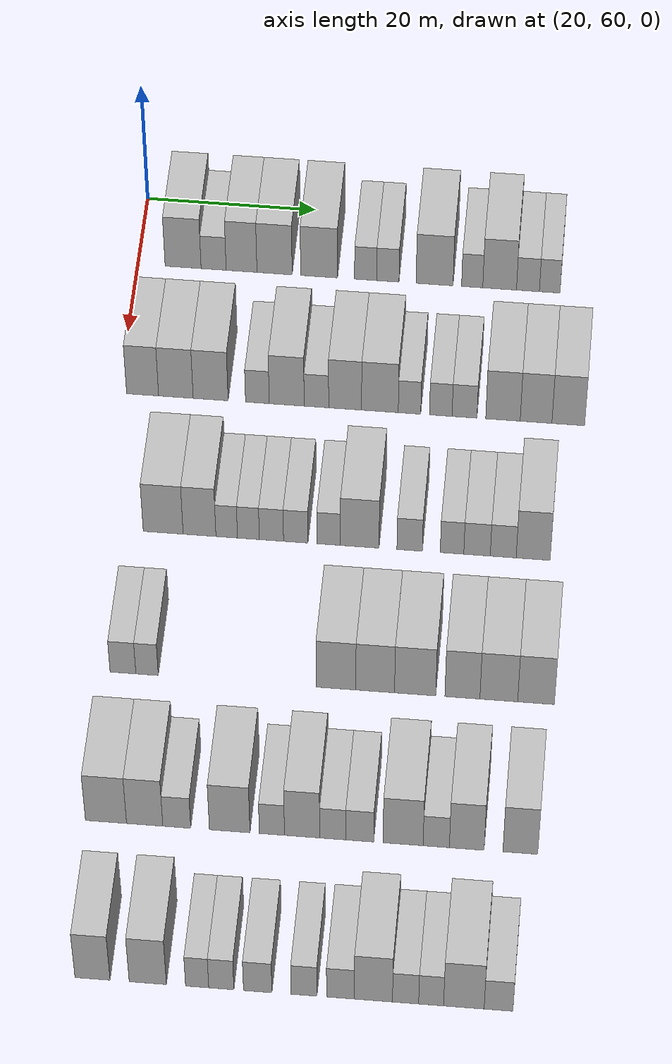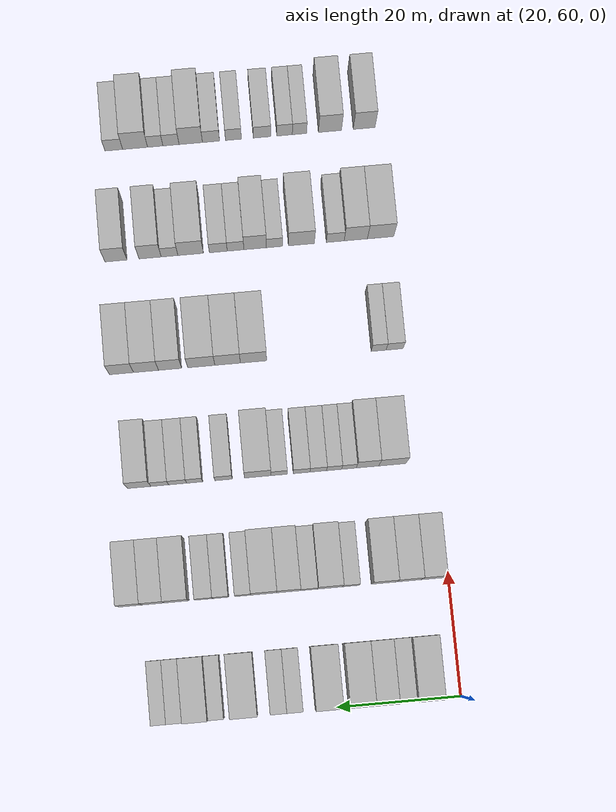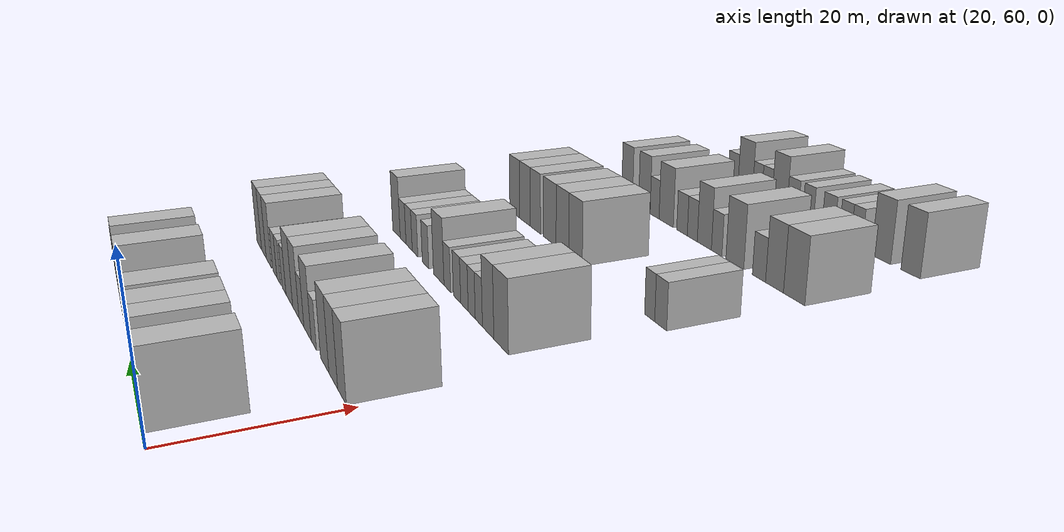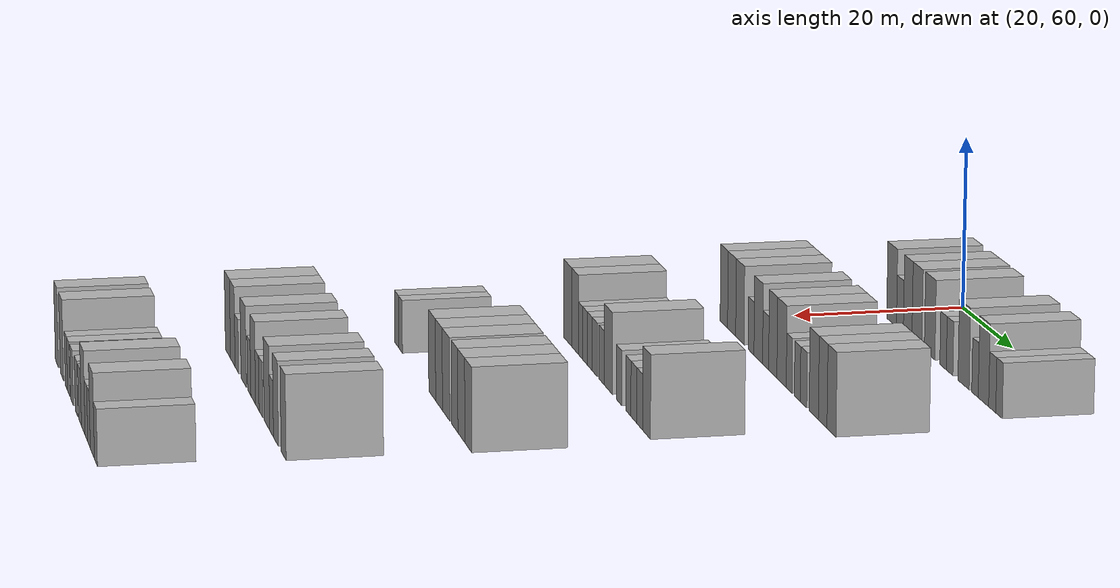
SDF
<sdf version="1.6">
 <world name="default">
  <model name="building_103">
   <static>1</static>
   <pose>25.0000 65.2869 0 0.000000 0.000000 0.000000</pose>
   <link name="link">
    <pose>0 0 4.50 0 0 0</pose>
    <collision name="collision"><geometry><box><size>10.0000 4.2329 9.0000</size></box></geometry></collision>
    <visual name="visual">
     <cast_shadows>0</cast_shadows>
     <geometry><box><size>10.0000 4.2329 9.0000</size></box></geometry>
     <material>
      <script>
       <uri>model://HANNAS_wall/materials/scripts</uri>
       <uri>model://HANNAS_wall/materials/textures</uri>
       <name>vrc/HANNAS_wall</name>
      </script>
     </material>
    </visual>
   </link>
  </model>
  <model name="building_104">
   <static>1</static>
   <pose>25.0000 68.8806 0 0.000000 0.000000 0.000000</pose>
   <link name="link">
    <pose>0 0 3.00 0 0 0</pose>
    <collision name="collision"><geometry><box><size>10.0000 2.9543 6.0000</size></box></geometry></collision>
    <visual name="visual">
     <cast_shadows>0</cast_shadows>
     <geometry><box><size>10.0000 2.9543 6.0000</size></box></geometry>
     <material>
      <script>
       <uri>model://HANNAS_wall/materials/scripts</uri>
       <uri>model://HANNAS_wall/materials/textures</uri>
       <name>vrc/HANNAS_wall</name>
      </script>
     </material>
    </visual>
   </link>
  </model>
  <model name="building_105">
   <static>1</static>
   <pose>25.0000 72.1689 0 0.000000 0.000000 0.000000</pose>
   <link name="link">
    <pose>0 0 4.50 0 0 0</pose>
    <collision name="collision"><geometry><box><size>10.0000 3.6223 9.0000</size></box></geometry></collision>
    <visual name="visual">
     <cast_shadows>0</cast_shadows>
     <geometry><box><size>10.0000 3.6223 9.0000</size></box></geometry>
     <material>
      <script>
       <uri>model://HANNAS_wall/materials/scripts</uri>
       <uri>model://HANNAS_wall/materials/textures</uri>
       <name>vrc/HANNAS_wall</name>
      </script>
     </material>
    </visual>
   </link>
  </model>
  <model name="building_106">
   <static>1</static>
   <pose>25.0000 76.0509 0 0.000000 0.000000 0.000000</pose>
   <link name="link">
    <pose>0 0 4.50 0 0 0</pose>
    <collision name="collision"><geometry><box><size>10.0000 4.1418 9.0000</size></box></geometry></collision>
    <visual name="visual">
     <cast_shadows>0</cast_shadows>
     <geometry><box><size>10.0000 4.1418 9.0000</size></box></geometry>
     <material>
      <script>
       <uri>model://HANNAS_wall/materials/scripts</uri>
       <uri>model://HANNAS_wall/materials/textures</uri>
       <name>vrc/HANNAS_wall</name>
      </script>
     </material>
    </visual>
   </link>
  </model>
  <model name="building_107">
   <static>1</static>
   <pose>25.0000 81.2848 0 0.000000 0.000000 0.000000</pose>
   <link name="link">
    <pose>0 0 4.50 0 0 0</pose>
    <collision name="collision"><geometry><box><size>10.0000 4.3260 9.0000</size></box></geometry></collision>
    <visual name="visual">
     <cast_shadows>0</cast_shadows>
     <geometry><box><size>10.0000 4.3260 9.0000</size></box></geometry>
     <material>
      <script>
       <uri>model://HANNAS_wall/materials/scripts</uri>
       <uri>model://HANNAS_wall/materials/textures</uri>
       <name>vrc/HANNAS_wall</name>
      </script>
     </material>
    </visual>
   </link>
  </model>
  <model name="building_108">
   <static>1</static>
   <pose>25.0000 86.7393 0 0.000000 0.000000 0.000000</pose>
   <link name="link">
    <pose>0 0 3.00 0 0 0</pose>
    <collision name="collision"><geometry><box><size>10.0000 2.5830 6.0000</size></box></geometry></collision>
    <visual name="visual">
     <cast_shadows>0</cast_shadows>
     <geometry><box><size>10.0000 2.5830 6.0000</size></box></geometry>
     <material>
      <script>
       <uri>model://HANNAS_wall/materials/scripts</uri>
       <uri>model://HANNAS_wall/materials/textures</uri>
       <name>vrc/HANNAS_wall</name>
      </script>
     </material>
    </visual>
   </link>
  </model>
  <model name="building_109">
   <static>1</static>
   <pose>25.0000 89.3430 0 0.000000 0.000000 0.000000</pose>
   <link name="link">
    <pose>0 0 3.00 0 0 0</pose>
    <collision name="collision"><geometry><box><size>10.0000 2.6244 6.0000</size></box></geometry></collision>
    <visual name="visual">
     <cast_shadows>0</cast_shadows>
     <geometry><box><size>10.0000 2.6244 6.0000</size></box></geometry>
     <material>
      <script>
       <uri>model://HANNAS_wall/materials/scripts</uri>
       <uri>model://HANNAS_wall/materials/textures</uri>
       <name>vrc/HANNAS_wall</name>
      </script>
     </material>
    </visual>
   </link>
  </model>
  <model name="building_110">
   <static>1</static>
   <pose>25.0000 94.8181 0 0.000000 0.000000 0.000000</pose>
   <link name="link">
    <pose>0 0 4.50 0 0 0</pose>
    <collision name="collision"><geometry><box><size>10.0000 4.3258 9.0000</size></box></geometry></collision>
    <visual name="visual">
     <cast_shadows>0</cast_shadows>
     <geometry><box><size>10.0000 4.3258 9.0000</size></box></geometry>
     <material>
      <script>
       <uri>model://HANNAS_wall/materials/scripts</uri>
       <uri>model://HANNAS_wall/materials/textures</uri>
       <name>vrc/HANNAS_wall</name>
      </script>
     </material>
    </visual>
   </link>
  </model>
  <model name="building_111">
   <static>1</static>
   <pose>25.0000 99.2209 0 0.000000 0.000000 0.000000</pose>
   <link name="link">
    <pose>0 0 3.00 0 0 0</pose>
    <collision name="collision"><geometry><box><size>10.0000 2.4798 6.0000</size></box></geometry></collision>
    <visual name="visual">
     <cast_shadows>0</cast_shadows>
     <geometry><box><size>10.0000 2.4798 6.0000</size></box></geometry>
     <material>
      <script>
       <uri>model://HANNAS_wall/materials/scripts</uri>
       <uri>model://HANNAS_wall/materials/textures</uri>
       <name>vrc/HANNAS_wall</name>
      </script>
     </material>
    </visual>
   </link>
  </model>
  <model name="building_112">
   <static>1</static>
   <pose>25.0000 102.4314 0 0.000000 0.000000 0.000000</pose>
   <link name="link">
    <pose>0 0 4.50 0 0 0</pose>
    <collision name="collision"><geometry><box><size>10.0000 3.9411 9.0000</size></box></geometry></collision>
    <visual name="visual">
     <cast_shadows>0</cast_shadows>
     <geometry><box><size>10.0000 3.9411 9.0000</size></box></geometry>
     <material>
      <script>
       <uri>model://HANNAS_wall/materials/scripts</uri>
       <uri>model://HANNAS_wall/materials/textures</uri>
       <name>vrc/HANNAS_wall</name>
      </script>
     </material>
    </visual>
   </link>
  </model>
  <model name="building_113">
   <static>1</static>
   <pose>25.0000 105.7370 0 0.000000 0.000000 0.000000</pose>
   <link name="link">
    <pose>0 0 3.00 0 0 0</pose>
    <collision name="collision"><geometry><box><size>10.0000 2.6701 6.0000</size></box></geometry></collision>
    <visual name="visual">
     <cast_shadows>0</cast_shadows>
     <geometry><box><size>10.0000 2.6701 6.0000</size></box></geometry>
     <material>
      <script>
       <uri>model://HANNAS_wall/materials/scripts</uri>
       <uri>model://HANNAS_wall/materials/textures</uri>
       <name>vrc/HANNAS_wall</name>
      </script>
     </material>
    </visual>
   </link>
  </model>
  <model name="building_114">
   <static>1</static>
   <pose>25.0000 108.2783 0 0.000000 0.000000 0.000000</pose>
   <link name="link">
    <pose>0 0 3.00 0 0 0</pose>
    <collision name="collision"><geometry><box><size>10.0000 2.4124 6.0000</size></box></geometry></collision>
    <visual name="visual">
     <cast_shadows>0</cast_shadows>
     <geometry><box><size>10.0000 2.4124 6.0000</size></box></geometry>
     <material>
      <script>
       <uri>model://HANNAS_wall/materials/scripts</uri>
       <uri>model://HANNAS_wall/materials/textures</uri>
       <name>vrc/HANNAS_wall</name>
      </script>
     </material>
    </visual>
   </link>
  </model>
  <model name="building_284">
   <static>1</static>
   <pose>44.0000 62.7200 0 0.000000 0.000000 0.000000</pose>
   <link name="link">
    <pose>0 0 4.50 0 0 0</pose>
    <collision name="collision"><geometry><box><size>10.0000 3.6850 9.0000</size></box></geometry></collision>
    <visual name="visual">
     <cast_shadows>0</cast_shadows>
     <geometry><box><size>10.0000 3.6850 9.0000</size></box></geometry>
     <material>
      <script>
       <uri>model://HANNAS_wall/materials/scripts</uri>
       <uri>model://HANNAS_wall/materials/textures</uri>
       <name>vrc/HANNAS_wall</name>
      </script>
     </material>
    </visual>
   </link>
  </model>
  <model name="building_285">
   <static>1</static>
   <pose>44.0000 66.5497 0 0.000000 0.000000 0.000000</pose>
   <link name="link">
    <pose>0 0 4.50 0 0 0</pose>
    <collision name="collision"><geometry><box><size>10.0000 3.9743 9.0000</size></box></geometry></collision>
    <visual name="visual">
     <cast_shadows>0</cast_shadows>
     <geometry><box><size>10.0000 3.9743 9.0000</size></box></geometry>
     <material>
      <script>
       <uri>model://HANNAS_wall/materials/scripts</uri>
       <uri>model://HANNAS_wall/materials/textures</uri>
       <name>vrc/HANNAS_wall</name>
      </script>
     </material>
    </visual>
   </link>
  </model>
  <model name="building_286">
   <static>1</static>
   <pose>44.0000 70.5510 0 0.000000 0.000000 0.000000</pose>
   <link name="link">
    <pose>0 0 4.50 0 0 0</pose>
    <collision name="collision"><geometry><box><size>10.0000 4.0282 9.0000</size></box></geometry></collision>
    <visual name="visual">
     <cast_shadows>0</cast_shadows>
     <geometry><box><size>10.0000 4.0282 9.0000</size></box></geometry>
     <material>
      <script>
       <uri>model://HANNAS_wall/materials/scripts</uri>
       <uri>model://HANNAS_wall/materials/textures</uri>
       <name>vrc/HANNAS_wall</name>
      </script>
     </material>
    </visual>
   </link>
  </model>
  <model name="building_287">
   <static>1</static>
   <pose>44.0000 75.9290 0 0.000000 0.000000 0.000000</pose>
   <link name="link">
    <pose>0 0 3.00 0 0 0</pose>
    <collision name="collision"><geometry><box><size>10.0000 2.7278 6.0000</size></box></geometry></collision>
    <visual name="visual">
     <cast_shadows>0</cast_shadows>
     <geometry><box><size>10.0000 2.7278 6.0000</size></box></geometry>
     <material>
      <script>
       <uri>model://HANNAS_wall/materials/scripts</uri>
       <uri>model://HANNAS_wall/materials/textures</uri>
       <name>vrc/HANNAS_wall</name>
      </script>
     </material>
    </visual>
   </link>
  </model>
  <model name="building_288">
   <static>1</static>
   <pose>44.0000 79.2973 0 0.000000 0.000000 0.000000</pose>
   <link name="link">
    <pose>0 0 4.50 0 0 0</pose>
    <collision name="collision"><geometry><box><size>10.0000 4.0089 9.0000</size></box></geometry></collision>
    <visual name="visual">
     <cast_shadows>0</cast_shadows>
     <geometry><box><size>10.0000 4.0089 9.0000</size></box></geometry>
     <material>
      <script>
       <uri>model://HANNAS_wall/materials/scripts</uri>
       <uri>model://HANNAS_wall/materials/textures</uri>
       <name>vrc/HANNAS_wall</name>
      </script>
     </material>
    </visual>
   </link>
  </model>
  <model name="building_289">
   <static>1</static>
   <pose>44.0000 82.7048 0 0.000000 0.000000 0.000000</pose>
   <link name="link">
    <pose>0 0 3.00 0 0 0</pose>
    <collision name="collision"><geometry><box><size>10.0000 2.8059 6.0000</size></box></geometry></collision>
    <visual name="visual">
     <cast_shadows>0</cast_shadows>
     <geometry><box><size>10.0000 2.8059 6.0000</size></box></geometry>
     <material>
      <script>
       <uri>model://HANNAS_wall/materials/scripts</uri>
       <uri>model://HANNAS_wall/materials/textures</uri>
       <name>vrc/HANNAS_wall</name>
      </script>
     </material>
    </visual>
   </link>
  </model>
  <model name="building_290">
   <static>1</static>
   <pose>44.0000 85.9934 0 0.000000 0.000000 0.000000</pose>
   <link name="link">
    <pose>0 0 4.50 0 0 0</pose>
    <collision name="collision"><geometry><box><size>10.0000 3.7713 9.0000</size></box></geometry></collision>
    <visual name="visual">
     <cast_shadows>0</cast_shadows>
     <geometry><box><size>10.0000 3.7713 9.0000</size></box></geometry>
     <material>
      <script>
       <uri>model://HANNAS_wall/materials/scripts</uri>
       <uri>model://HANNAS_wall/materials/textures</uri>
       <name>vrc/HANNAS_wall</name>
      </script>
     </material>
    </visual>
   </link>
  </model>
  <model name="building_291">
   <static>1</static>
   <pose>44.0000 89.9793 0 0.000000 0.000000 0.000000</pose>
   <link name="link">
    <pose>0 0 4.50 0 0 0</pose>
    <collision name="collision"><geometry><box><size>10.0000 4.2006 9.0000</size></box></geometry></collision>
    <visual name="visual">
     <cast_shadows>0</cast_shadows>
     <geometry><box><size>10.0000 4.2006 9.0000</size></box></geometry>
     <material>
      <script>
       <uri>model://HANNAS_wall/materials/scripts</uri>
       <uri>model://HANNAS_wall/materials/textures</uri>
       <name>vrc/HANNAS_wall</name>
      </script>
     </material>
    </visual>
   </link>
  </model>
  <model name="building_292">
   <static>1</static>
   <pose>44.0000 93.3676 0 0.000000 0.000000 0.000000</pose>
   <link name="link">
    <pose>0 0 3.00 0 0 0</pose>
    <collision name="collision"><geometry><box><size>10.0000 2.5759 6.0000</size></box></geometry></collision>
    <visual name="visual">
     <cast_shadows>0</cast_shadows>
     <geometry><box><size>10.0000 2.5759 6.0000</size></box></geometry>
     <material>
      <script>
       <uri>model://HANNAS_wall/materials/scripts</uri>
       <uri>model://HANNAS_wall/materials/textures</uri>
       <name>vrc/HANNAS_wall</name>
      </script>
     </material>
    </visual>
   </link>
  </model>
  <model name="building_293">
   <static>1</static>
   <pose>44.0000 96.9485 0 0.000000 0.000000 0.000000</pose>
   <link name="link">
    <pose>0 0 3.00 0 0 0</pose>
    <collision name="collision"><geometry><box><size>10.0000 2.5858 6.0000</size></box></geometry></collision>
    <visual name="visual">
     <cast_shadows>0</cast_shadows>
     <geometry><box><size>10.0000 2.5858 6.0000</size></box></geometry>
     <material>
      <script>
       <uri>model://HANNAS_wall/materials/scripts</uri>
       <uri>model://HANNAS_wall/materials/textures</uri>
       <name>vrc/HANNAS_wall</name>
      </script>
     </material>
    </visual>
   </link>
  </model>
  <model name="building_294">
   <static>1</static>
   <pose>44.0000 99.6641 0 0.000000 0.000000 0.000000</pose>
   <link name="link">
    <pose>0 0 3.00 0 0 0</pose>
    <collision name="collision"><geometry><box><size>10.0000 2.8456 6.0000</size></box></geometry></collision>
    <visual name="visual">
     <cast_shadows>0</cast_shadows>
     <geometry><box><size>10.0000 2.8456 6.0000</size></box></geometry>
     <material>
      <script>
       <uri>model://HANNAS_wall/materials/scripts</uri>
       <uri>model://HANNAS_wall/materials/textures</uri>
       <name>vrc/HANNAS_wall</name>
      </script>
     </material>
    </visual>
   </link>
  </model>
  <model name="building_295">
   <static>1</static>
   <pose>44.0000 104.0544 0 0.000000 0.000000 0.000000</pose>
   <link name="link">
    <pose>0 0 4.50 0 0 0</pose>
    <collision name="collision"><geometry><box><size>10.0000 3.9349 9.0000</size></box></geometry></collision>
    <visual name="visual">
     <cast_shadows>0</cast_shadows>
     <geometry><box><size>10.0000 3.9349 9.0000</size></box></geometry>
     <material>
      <script>
       <uri>model://HANNAS_wall/materials/scripts</uri>
       <uri>model://HANNAS_wall/materials/textures</uri>
       <name>vrc/HANNAS_wall</name>
      </script>
     </material>
    </visual>
   </link>
  </model>
  <model name="building_296">
   <static>1</static>
   <pose>44.0000 107.8331 0 0.000000 0.000000 0.000000</pose>
   <link name="link">
    <pose>0 0 4.50 0 0 0</pose>
    <collision name="collision"><geometry><box><size>10.0000 3.6225 9.0000</size></box></geometry></collision>
    <visual name="visual">
     <cast_shadows>0</cast_shadows>
     <geometry><box><size>10.0000 3.6225 9.0000</size></box></geometry>
     <material>
      <script>
       <uri>model://HANNAS_wall/materials/scripts</uri>
       <uri>model://HANNAS_wall/materials/textures</uri>
       <name>vrc/HANNAS_wall</name>
      </script>
     </material>
    </visual>
   </link>
  </model>
  <model name="building_297">
   <static>1</static>
   <pose>44.0000 111.5086 0 0.000000 0.000000 0.000000</pose>
   <link name="link">
    <pose>0 0 4.50 0 0 0</pose>
    <collision name="collision"><geometry><box><size>10.0000 3.7287 9.0000</size></box></geometry></collision>
    <visual name="visual">
     <cast_shadows>0</cast_shadows>
     <geometry><box><size>10.0000 3.7287 9.0000</size></box></geometry>
     <material>
      <script>
       <uri>model://HANNAS_wall/materials/scripts</uri>
       <uri>model://HANNAS_wall/materials/textures</uri>
       <name>vrc/HANNAS_wall</name>
      </script>
     </material>
    </visual>
   </link>
  </model>
  <model name="building_459">
   <static>1</static>
   <pose>63.0000 67.2338 0 0.000000 0.000000 0.000000</pose>
   <link name="link">
    <pose>0 0 4.50 0 0 0</pose>
    <collision name="collision"><geometry><box><size>10.0000 4.4837 9.0000</size></box></geometry></collision>
    <visual name="visual">
     <cast_shadows>0</cast_shadows>
     <geometry><box><size>10.0000 4.4837 9.0000</size></box></geometry>
     <material>
      <script>
       <uri>model://HANNAS_wall/materials/scripts</uri>
       <uri>model://HANNAS_wall/materials/textures</uri>
       <name>vrc/HANNAS_wall</name>
      </script>
     </material>
    </visual>
   </link>
  </model>
  <model name="building_460">
   <static>1</static>
   <pose>63.0000 71.3196 0 0.000000 0.000000 0.000000</pose>
   <link name="link">
    <pose>0 0 4.50 0 0 0</pose>
    <collision name="collision"><geometry><box><size>10.0000 3.6880 9.0000</size></box></geometry></collision>
    <visual name="visual">
     <cast_shadows>0</cast_shadows>
     <geometry><box><size>10.0000 3.6880 9.0000</size></box></geometry>
     <material>
      <script>
       <uri>model://HANNAS_wall/materials/scripts</uri>
       <uri>model://HANNAS_wall/materials/textures</uri>
       <name>vrc/HANNAS_wall</name>
      </script>
     </material>
    </visual>
   </link>
  </model>
  <model name="building_461">
   <static>1</static>
   <pose>63.0000 74.3735 0 0.000000 0.000000 0.000000</pose>
   <link name="link">
    <pose>0 0 3.00 0 0 0</pose>
    <collision name="collision"><geometry><box><size>10.0000 2.4196 6.0000</size></box></geometry></collision>
    <visual name="visual">
     <cast_shadows>0</cast_shadows>
     <geometry><box><size>10.0000 2.4196 6.0000</size></box></geometry>
     <material>
      <script>
       <uri>model://HANNAS_wall/materials/scripts</uri>
       <uri>model://HANNAS_wall/materials/textures</uri>
       <name>vrc/HANNAS_wall</name>
      </script>
     </material>
    </visual>
   </link>
  </model>
  <model name="building_462">
   <static>1</static>
   <pose>63.0000 76.8125 0 0.000000 0.000000 0.000000</pose>
   <link name="link">
    <pose>0 0 3.00 0 0 0</pose>
    <collision name="collision"><geometry><box><size>10.0000 2.4585 6.0000</size></box></geometry></collision>
    <visual name="visual">
     <cast_shadows>0</cast_shadows>
     <geometry><box><size>10.0000 2.4585 6.0000</size></box></geometry>
     <material>
      <script>
       <uri>model://HANNAS_wall/materials/scripts</uri>
       <uri>model://HANNAS_wall/materials/textures</uri>
       <name>vrc/HANNAS_wall</name>
      </script>
     </material>
    </visual>
   </link>
  </model>
  <model name="building_463">
   <static>1</static>
   <pose>63.0000 79.3978 0 0.000000 0.000000 0.000000</pose>
   <link name="link">
    <pose>0 0 3.00 0 0 0</pose>
    <collision name="collision"><geometry><box><size>10.0000 2.7122 6.0000</size></box></geometry></collision>
    <visual name="visual">
     <cast_shadows>0</cast_shadows>
     <geometry><box><size>10.0000 2.7122 6.0000</size></box></geometry>
     <material>
      <script>
       <uri>model://HANNAS_wall/materials/scripts</uri>
       <uri>model://HANNAS_wall/materials/textures</uri>
       <name>vrc/HANNAS_wall</name>
      </script>
     </material>
    </visual>
   </link>
  </model>
  <model name="building_464">
   <static>1</static>
   <pose>63.0000 82.1235 0 0.000000 0.000000 0.000000</pose>
   <link name="link">
    <pose>0 0 3.00 0 0 0</pose>
    <collision name="collision"><geometry><box><size>10.0000 2.7392 6.0000</size></box></geometry></collision>
    <visual name="visual">
     <cast_shadows>0</cast_shadows>
     <geometry><box><size>10.0000 2.7392 6.0000</size></box></geometry>
     <material>
      <script>
       <uri>model://HANNAS_wall/materials/scripts</uri>
       <uri>model://HANNAS_wall/materials/textures</uri>
       <name>vrc/HANNAS_wall</name>
      </script>
     </material>
    </visual>
   </link>
  </model>
  <model name="building_465">
   <static>1</static>
   <pose>63.0000 85.8149 0 0.000000 0.000000 0.000000</pose>
   <link name="link">
    <pose>0 0 3.00 0 0 0</pose>
    <collision name="collision"><geometry><box><size>10.0000 2.6436 6.0000</size></box></geometry></collision>
    <visual name="visual">
     <cast_shadows>0</cast_shadows>
     <geometry><box><size>10.0000 2.6436 6.0000</size></box></geometry>
     <material>
      <script>
       <uri>model://HANNAS_wall/materials/scripts</uri>
       <uri>model://HANNAS_wall/materials/textures</uri>
       <name>vrc/HANNAS_wall</name>
      </script>
     </material>
    </visual>
   </link>
  </model>
  <model name="building_466">
   <static>1</static>
   <pose>63.0000 89.2924 0 0.000000 0.000000 0.000000</pose>
   <link name="link">
    <pose>0 0 4.50 0 0 0</pose>
    <collision name="collision"><geometry><box><size>10.0000 4.3114 9.0000</size></box></geometry></collision>
    <visual name="visual">
     <cast_shadows>0</cast_shadows>
     <geometry><box><size>10.0000 4.3114 9.0000</size></box></geometry>
     <material>
      <script>
       <uri>model://HANNAS_wall/materials/scripts</uri>
       <uri>model://HANNAS_wall/materials/textures</uri>
       <name>vrc/HANNAS_wall</name>
      </script>
     </material>
    </visual>
   </link>
  </model>
  <model name="building_467">
   <static>1</static>
   <pose>63.0000 94.8716 0 0.000000 0.000000 0.000000</pose>
   <link name="link">
    <pose>0 0 3.00 0 0 0</pose>
    <collision name="collision"><geometry><box><size>10.0000 2.8469 6.0000</size></box></geometry></collision>
    <visual name="visual">
     <cast_shadows>0</cast_shadows>
     <geometry><box><size>10.0000 2.8469 6.0000</size></box></geometry>
     <material>
      <script>
       <uri>model://HANNAS_wall/materials/scripts</uri>
       <uri>model://HANNAS_wall/materials/textures</uri>
       <name>vrc/HANNAS_wall</name>
      </script>
     </material>
    </visual>
   </link>
  </model>
  <model name="building_468">
   <static>1</static>
   <pose>63.0000 99.6085 0 0.000000 0.000000 0.000000</pose>
   <link name="link">
    <pose>0 0 3.00 0 0 0</pose>
    <collision name="collision"><geometry><box><size>10.0000 2.6270 6.0000</size></box></geometry></collision>
    <visual name="visual">
     <cast_shadows>0</cast_shadows>
     <geometry><box><size>10.0000 2.6270 6.0000</size></box></geometry>
     <material>
      <script>
       <uri>model://HANNAS_wall/materials/scripts</uri>
       <uri>model://HANNAS_wall/materials/textures</uri>
       <name>vrc/HANNAS_wall</name>
      </script>
     </material>
    </visual>
   </link>
  </model>
  <model name="building_469">
   <static>1</static>
   <pose>63.0000 102.4008 0 0.000000 0.000000 0.000000</pose>
   <link name="link">
    <pose>0 0 3.00 0 0 0</pose>
    <collision name="collision"><geometry><box><size>10.0000 2.9577 6.0000</size></box></geometry></collision>
    <visual name="visual">
     <cast_shadows>0</cast_shadows>
     <geometry><box><size>10.0000 2.9577 6.0000</size></box></geometry>
     <material>
      <script>
       <uri>model://HANNAS_wall/materials/scripts</uri>
       <uri>model://HANNAS_wall/materials/textures</uri>
       <name>vrc/HANNAS_wall</name>
      </script>
     </material>
    </visual>
   </link>
  </model>
  <model name="building_470">
   <static>1</static>
   <pose>63.0000 105.3233 0 0.000000 0.000000 0.000000</pose>
   <link name="link">
    <pose>0 0 3.00 0 0 0</pose>
    <collision name="collision"><geometry><box><size>10.0000 2.8873 6.0000</size></box></geometry></collision>
    <visual name="visual">
     <cast_shadows>0</cast_shadows>
     <geometry><box><size>10.0000 2.8873 6.0000</size></box></geometry>
     <material>
      <script>
       <uri>model://HANNAS_wall/materials/scripts</uri>
       <uri>model://HANNAS_wall/materials/textures</uri>
       <name>vrc/HANNAS_wall</name>
      </script>
     </material>
    </visual>
   </link>
  </model>
  <model name="building_471">
   <static>1</static>
   <pose>63.0000 108.6572 0 0.000000 0.000000 0.000000</pose>
   <link name="link">
    <pose>0 0 4.50 0 0 0</pose>
    <collision name="collision"><geometry><box><size>10.0000 3.7804 9.0000</size></box></geometry></collision>
    <visual name="visual">
     <cast_shadows>0</cast_shadows>
     <geometry><box><size>10.0000 3.7804 9.0000</size></box></geometry>
     <material>
      <script>
       <uri>model://HANNAS_wall/materials/scripts</uri>
       <uri>model://HANNAS_wall/materials/textures</uri>
       <name>vrc/HANNAS_wall</name>
      </script>
     </material>
    </visual>
   </link>
  </model>
  <model name="building_635">
   <static>1</static>
   <pose>82.0000 64.9645 0 0.000000 0.000000 0.000000</pose>
   <link name="link">
    <pose>0 0 3.00 0 0 0</pose>
    <collision name="collision"><geometry><box><size>10.0000 2.8286 6.0000</size></box></geometry></collision>
    <visual name="visual">
     <cast_shadows>0</cast_shadows>
     <geometry><box><size>10.0000 2.8286 6.0000</size></box></geometry>
     <material>
      <script>
       <uri>model://HANNAS_wall/materials/scripts</uri>
       <uri>model://HANNAS_wall/materials/textures</uri>
       <name>vrc/HANNAS_wall</name>
      </script>
     </material>
    </visual>
   </link>
  </model>
  <model name="building_636">
   <static>1</static>
   <pose>82.0000 67.6112 0 0.000000 0.000000 0.000000</pose>
   <link name="link">
    <pose>0 0 3.00 0 0 0</pose>
    <collision name="collision"><geometry><box><size>10.0000 2.4647 6.0000</size></box></geometry></collision>
    <visual name="visual">
     <cast_shadows>0</cast_shadows>
     <geometry><box><size>10.0000 2.4647 6.0000</size></box></geometry>
     <material>
      <script>
       <uri>model://HANNAS_wall/materials/scripts</uri>
       <uri>model://HANNAS_wall/materials/textures</uri>
       <name>vrc/HANNAS_wall</name>
      </script>
     </material>
    </visual>
   </link>
  </model>
  <model name="building_637">
   <static>1</static>
   <pose>82.0000 88.3289 0 0.000000 0.000000 0.000000</pose>
   <link name="link">
    <pose>0 0 4.50 0 0 0</pose>
    <collision name="collision"><geometry><box><size>10.0000 4.3236 9.0000</size></box></geometry></collision>
    <visual name="visual">
     <cast_shadows>0</cast_shadows>
     <geometry><box><size>10.0000 4.3236 9.0000</size></box></geometry>
     <material>
      <script>
       <uri>model://HANNAS_wall/materials/scripts</uri>
       <uri>model://HANNAS_wall/materials/textures</uri>
       <name>vrc/HANNAS_wall</name>
      </script>
     </material>
    </visual>
   </link>
  </model>
  <model name="building_638">
   <static>1</static>
   <pose>82.0000 92.6005 0 0.000000 0.000000 0.000000</pose>
   <link name="link">
    <pose>0 0 4.50 0 0 0</pose>
    <collision name="collision"><geometry><box><size>10.0000 4.2195 9.0000</size></box></geometry></collision>
    <visual name="visual">
     <cast_shadows>0</cast_shadows>
     <geometry><box><size>10.0000 4.2195 9.0000</size></box></geometry>
     <material>
      <script>
       <uri>model://HANNAS_wall/materials/scripts</uri>
       <uri>model://HANNAS_wall/materials/textures</uri>
       <name>vrc/HANNAS_wall</name>
      </script>
     </material>
    </visual>
   </link>
  </model>
  <model name="building_639">
   <static>1</static>
   <pose>82.0000 96.9573 0 0.000000 0.000000 0.000000</pose>
   <link name="link">
    <pose>0 0 4.50 0 0 0</pose>
    <collision name="collision"><geometry><box><size>10.0000 4.4940 9.0000</size></box></geometry></collision>
    <visual name="visual">
     <cast_shadows>0</cast_shadows>
     <geometry><box><size>10.0000 4.4940 9.0000</size></box></geometry>
     <material>
      <script>
       <uri>model://HANNAS_wall/materials/scripts</uri>
       <uri>model://HANNAS_wall/materials/textures</uri>
       <name>vrc/HANNAS_wall</name>
      </script>
     </material>
    </visual>
   </link>
  </model>
  <model name="building_640">
   <static>1</static>
   <pose>82.0000 102.1110 0 0.000000 0.000000 0.000000</pose>
   <link name="link">
    <pose>0 0 4.50 0 0 0</pose>
    <collision name="collision"><geometry><box><size>10.0000 3.8134 9.0000</size></box></geometry></collision>
    <visual name="visual">
     <cast_shadows>0</cast_shadows>
     <geometry><box><size>10.0000 3.8134 9.0000</size></box></geometry>
     <material>
      <script>
       <uri>model://HANNAS_wall/materials/scripts</uri>
       <uri>model://HANNAS_wall/materials/textures</uri>
       <name>vrc/HANNAS_wall</name>
      </script>
     </material>
    </visual>
   </link>
  </model>
  <model name="building_641">
   <static>1</static>
   <pose>82.0000 106.0755 0 0.000000 0.000000 0.000000</pose>
   <link name="link">
    <pose>0 0 4.50 0 0 0</pose>
    <collision name="collision"><geometry><box><size>10.0000 4.1157 9.0000</size></box></geometry></collision>
    <visual name="visual">
     <cast_shadows>0</cast_shadows>
     <geometry><box><size>10.0000 4.1157 9.0000</size></box></geometry>
     <material>
      <script>
       <uri>model://HANNAS_wall/materials/scripts</uri>
       <uri>model://HANNAS_wall/materials/textures</uri>
       <name>vrc/HANNAS_wall</name>
      </script>
     </material>
    </visual>
   </link>
  </model>
  <model name="building_642">
   <static>1</static>
   <pose>82.0000 110.1265 0 0.000000 0.000000 0.000000</pose>
   <link name="link">
    <pose>0 0 4.50 0 0 0</pose>
    <collision name="collision"><geometry><box><size>10.0000 3.9863 9.0000</size></box></geometry></collision>
    <visual name="visual">
     <cast_shadows>0</cast_shadows>
     <geometry><box><size>10.0000 3.9863 9.0000</size></box></geometry>
     <material>
      <script>
       <uri>model://HANNAS_wall/materials/scripts</uri>
       <uri>model://HANNAS_wall/materials/textures</uri>
       <name>vrc/HANNAS_wall</name>
      </script>
     </material>
    </visual>
   </link>
  </model>
  <model name="building_813">
   <static>1</static>
   <pose>101.0000 65.4008 0 0.000000 0.000000 0.000000</pose>
   <link name="link">
    <pose>0 0 4.50 0 0 0</pose>
    <collision name="collision"><geometry><box><size>10.0000 4.4035 9.0000</size></box></geometry></collision>
    <visual name="visual">
     <cast_shadows>0</cast_shadows>
     <geometry><box><size>10.0000 4.4035 9.0000</size></box></geometry>
     <material>
      <script>
       <uri>model://HANNAS_wall/materials/scripts</uri>
       <uri>model://HANNAS_wall/materials/textures</uri>
       <name>vrc/HANNAS_wall</name>
      </script>
     </material>
    </visual>
   </link>
  </model>
  <model name="building_814">
   <static>1</static>
   <pose>101.0000 69.5476 0 0.000000 0.000000 0.000000</pose>
   <link name="link">
    <pose>0 0 4.50 0 0 0</pose>
    <collision name="collision"><geometry><box><size>10.0000 3.8902 9.0000</size></box></geometry></collision>
    <visual name="visual">
     <cast_shadows>0</cast_shadows>
     <geometry><box><size>10.0000 3.8902 9.0000</size></box></geometry>
     <material>
      <script>
       <uri>model://HANNAS_wall/materials/scripts</uri>
       <uri>model://HANNAS_wall/materials/textures</uri>
       <name>vrc/HANNAS_wall</name>
      </script>
     </material>
    </visual>
   </link>
  </model>
  <model name="building_815">
   <static>1</static>
   <pose>101.0000 72.9857 0 0.000000 0.000000 0.000000</pose>
   <link name="link">
    <pose>0 0 3.00 0 0 0</pose>
    <collision name="collision"><geometry><box><size>10.0000 2.9859 6.0000</size></box></geometry></collision>
    <visual name="visual">
     <cast_shadows>0</cast_shadows>
     <geometry><box><size>10.0000 2.9859 6.0000</size></box></geometry>
     <material>
      <script>
       <uri>model://HANNAS_wall/materials/scripts</uri>
       <uri>model://HANNAS_wall/materials/textures</uri>
       <name>vrc/HANNAS_wall</name>
      </script>
     </material>
    </visual>
   </link>
  </model>
  <model name="building_816">
   <static>1</static>
   <pose>101.0000 78.6489 0 0.000000 0.000000 0.000000</pose>
   <link name="link">
    <pose>0 0 4.50 0 0 0</pose>
    <collision name="collision"><geometry><box><size>10.0000 4.3405 9.0000</size></box></geometry></collision>
    <visual name="visual">
     <cast_shadows>0</cast_shadows>
     <geometry><box><size>10.0000 4.3405 9.0000</size></box></geometry>
     <material>
      <script>
       <uri>model://HANNAS_wall/materials/scripts</uri>
       <uri>model://HANNAS_wall/materials/textures</uri>
       <name>vrc/HANNAS_wall</name>
      </script>
     </material>
    </visual>
   </link>
  </model>
  <model name="building_817">
   <static>1</static>
   <pose>101.0000 83.1628 0 0.000000 0.000000 0.000000</pose>
   <link name="link">
    <pose>0 0 3.00 0 0 0</pose>
    <collision name="collision"><geometry><box><size>10.0000 2.6873 6.0000</size></box></geometry></collision>
    <visual name="visual">
     <cast_shadows>0</cast_shadows>
     <geometry><box><size>10.0000 2.6873 6.0000</size></box></geometry>
     <material>
      <script>
       <uri>model://HANNAS_wall/materials/scripts</uri>
       <uri>model://HANNAS_wall/materials/textures</uri>
       <name>vrc/HANNAS_wall</name>
      </script>
     </material>
    </visual>
   </link>
  </model>
  <model name="building_818">
   <static>1</static>
   <pose>101.0000 86.3847 0 0.000000 0.000000 0.000000</pose>
   <link name="link">
    <pose>0 0 4.50 0 0 0</pose>
    <collision name="collision"><geometry><box><size>10.0000 3.7564 9.0000</size></box></geometry></collision>
    <visual name="visual">
     <cast_shadows>0</cast_shadows>
     <geometry><box><size>10.0000 3.7564 9.0000</size></box></geometry>
     <material>
      <script>
       <uri>model://HANNAS_wall/materials/scripts</uri>
       <uri>model://HANNAS_wall/materials/textures</uri>
       <name>vrc/HANNAS_wall</name>
      </script>
     </material>
    </visual>
   </link>
  </model>
  <model name="building_819">
   <static>1</static>
   <pose>101.0000 89.6455 0 0.000000 0.000000 0.000000</pose>
   <link name="link">
    <pose>0 0 3.00 0 0 0</pose>
    <collision name="collision"><geometry><box><size>10.0000 2.7653 6.0000</size></box></geometry></collision>
    <visual name="visual">
     <cast_shadows>0</cast_shadows>
     <geometry><box><size>10.0000 2.7653 6.0000</size></box></geometry>
     <material>
      <script>
       <uri>model://HANNAS_wall/materials/scripts</uri>
       <uri>model://HANNAS_wall/materials/textures</uri>
       <name>vrc/HANNAS_wall</name>
      </script>
     </material>
    </visual>
   </link>
  </model>
  <model name="building_820">
   <static>1</static>
   <pose>101.0000 92.5223 0 0.000000 0.000000 0.000000</pose>
   <link name="link">
    <pose>0 0 3.00 0 0 0</pose>
    <collision name="collision"><geometry><box><size>10.0000 2.9883 6.0000</size></box></geometry></collision>
    <visual name="visual">
     <cast_shadows>0</cast_shadows>
     <geometry><box><size>10.0000 2.9883 6.0000</size></box></geometry>
     <material>
      <script>
       <uri>model://HANNAS_wall/materials/scripts</uri>
       <uri>model://HANNAS_wall/materials/textures</uri>
       <name>vrc/HANNAS_wall</name>
      </script>
     </material>
    </visual>
   </link>
  </model>
  <model name="building_821">
   <static>1</static>
   <pose>101.0000 97.1464 0 0.000000 0.000000 0.000000</pose>
   <link name="link">
    <pose>0 0 4.50 0 0 0</pose>
    <collision name="collision"><geometry><box><size>10.0000 4.2599 9.0000</size></box></geometry></collision>
    <visual name="visual">
     <cast_shadows>0</cast_shadows>
     <geometry><box><size>10.0000 4.2599 9.0000</size></box></geometry>
     <material>
      <script>
       <uri>model://HANNAS_wall/materials/scripts</uri>
       <uri>model://HANNAS_wall/materials/textures</uri>
       <name>vrc/HANNAS_wall</name>
      </script>
     </material>
    </visual>
   </link>
  </model>
  <model name="building_822">
   <static>1</static>
   <pose>101.0000 100.6716 0 0.000000 0.000000 0.000000</pose>
   <link name="link">
    <pose>0 0 3.00 0 0 0</pose>
    <collision name="collision"><geometry><box><size>10.0000 2.7906 6.0000</size></box></geometry></collision>
    <visual name="visual">
     <cast_shadows>0</cast_shadows>
     <geometry><box><size>10.0000 2.7906 6.0000</size></box></geometry>
     <material>
      <script>
       <uri>model://HANNAS_wall/materials/scripts</uri>
       <uri>model://HANNAS_wall/materials/textures</uri>
       <name>vrc/HANNAS_wall</name>
      </script>
     </material>
    </visual>
   </link>
  </model>
  <model name="building_823">
   <static>1</static>
   <pose>101.0000 103.9148 0 0.000000 0.000000 0.000000</pose>
   <link name="link">
    <pose>0 0 4.50 0 0 0</pose>
    <collision name="collision"><geometry><box><size>10.0000 3.6958 9.0000</size></box></geometry></collision>
    <visual name="visual">
     <cast_shadows>0</cast_shadows>
     <geometry><box><size>10.0000 3.6958 9.0000</size></box></geometry>
     <material>
      <script>
       <uri>model://HANNAS_wall/materials/scripts</uri>
       <uri>model://HANNAS_wall/materials/textures</uri>
       <name>vrc/HANNAS_wall</name>
      </script>
     </material>
    </visual>
   </link>
  </model>
  <model name="building_824">
   <static>1</static>
   <pose>101.0000 109.6073 0 0.000000 0.000000 0.000000</pose>
   <link name="link">
    <pose>0 0 4.50 0 0 0</pose>
    <collision name="collision"><geometry><box><size>10.0000 3.6892 9.0000</size></box></geometry></collision>
    <visual name="visual">
     <cast_shadows>0</cast_shadows>
     <geometry><box><size>10.0000 3.6892 9.0000</size></box></geometry>
     <material>
      <script>
       <uri>model://HANNAS_wall/materials/scripts</uri>
       <uri>model://HANNAS_wall/materials/textures</uri>
       <name>vrc/HANNAS_wall</name>
      </script>
     </material>
    </visual>
   </link>
  </model>
  <model name="building_987">
   <static>1</static>
   <pose>120.0000 66.2928 0 0.000000 0.000000 0.000000</pose>
   <link name="link">
    <pose>0 0 4.50 0 0 0</pose>
    <collision name="collision"><geometry><box><size>10.0000 3.6700 9.0000</size></box></geometry></collision>
    <visual name="visual">
     <cast_shadows>0</cast_shadows>
     <geometry><box><size>10.0000 3.6700 9.0000</size></box></geometry>
     <material>
      <script>
       <uri>model://HANNAS_wall/materials/scripts</uri>
       <uri>model://HANNAS_wall/materials/textures</uri>
       <name>vrc/HANNAS_wall</name>
      </script>
     </material>
    </visual>
   </link>
  </model>
  <model name="building_988">
   <static>1</static>
   <pose>120.0000 72.0713 0 0.000000 0.000000 0.000000</pose>
   <link name="link">
    <pose>0 0 4.50 0 0 0</pose>
    <collision name="collision"><geometry><box><size>10.0000 3.8870 9.0000</size></box></geometry></collision>
    <visual name="visual">
     <cast_shadows>0</cast_shadows>
     <geometry><box><size>10.0000 3.8870 9.0000</size></box></geometry>
     <material>
      <script>
       <uri>model://HANNAS_wall/materials/scripts</uri>
       <uri>model://HANNAS_wall/materials/textures</uri>
       <name>vrc/HANNAS_wall</name>
      </script>
     </material>
    </visual>
   </link>
  </model>
  <model name="building_989">
   <static>1</static>
   <pose>120.0000 77.2232 0 0.000000 0.000000 0.000000</pose>
   <link name="link">
    <pose>0 0 3.00 0 0 0</pose>
    <collision name="collision"><geometry><box><size>10.0000 2.4167 6.0000</size></box></geometry></collision>
    <visual name="visual">
     <cast_shadows>0</cast_shadows>
     <geometry><box><size>10.0000 2.4167 6.0000</size></box></geometry>
     <material>
      <script>
       <uri>model://HANNAS_wall/materials/scripts</uri>
       <uri>model://HANNAS_wall/materials/textures</uri>
       <name>vrc/HANNAS_wall</name>
      </script>
     </material>
    </visual>
   </link>
  </model>
  <model name="building_990">
   <static>1</static>
   <pose>120.0000 79.7428 0 0.000000 0.000000 0.000000</pose>
   <link name="link">
    <pose>0 0 3.00 0 0 0</pose>
    <collision name="collision"><geometry><box><size>10.0000 2.6227 6.0000</size></box></geometry></collision>
    <visual name="visual">
     <cast_shadows>0</cast_shadows>
     <geometry><box><size>10.0000 2.6227 6.0000</size></box></geometry>
     <material>
      <script>
       <uri>model://HANNAS_wall/materials/scripts</uri>
       <uri>model://HANNAS_wall/materials/textures</uri>
       <name>vrc/HANNAS_wall</name>
      </script>
     </material>
    </visual>
   </link>
  </model>
  <model name="building_991">
   <static>1</static>
   <pose>120.0000 83.5353 0 0.000000 0.000000 0.000000</pose>
   <link name="link">
    <pose>0 0 3.00 0 0 0</pose>
    <collision name="collision"><geometry><box><size>10.0000 2.9623 6.0000</size></box></geometry></collision>
    <visual name="visual">
     <cast_shadows>0</cast_shadows>
     <geometry><box><size>10.0000 2.9623 6.0000</size></box></geometry>
     <material>
      <script>
       <uri>model://HANNAS_wall/materials/scripts</uri>
       <uri>model://HANNAS_wall/materials/textures</uri>
       <name>vrc/HANNAS_wall</name>
      </script>
     </material>
    </visual>
   </link>
  </model>
  <model name="building_992">
   <static>1</static>
   <pose>120.0000 88.3603 0 0.000000 0.000000 0.000000</pose>
   <link name="link">
    <pose>0 0 3.00 0 0 0</pose>
    <collision name="collision"><geometry><box><size>10.0000 2.6877 6.0000</size></box></geometry></collision>
    <visual name="visual">
     <cast_shadows>0</cast_shadows>
     <geometry><box><size>10.0000 2.6877 6.0000</size></box></geometry>
     <material>
      <script>
       <uri>model://HANNAS_wall/materials/scripts</uri>
       <uri>model://HANNAS_wall/materials/textures</uri>
       <name>vrc/HANNAS_wall</name>
      </script>
     </material>
    </visual>
   </link>
  </model>
  <model name="building_993">
   <static>1</static>
   <pose>120.0000 92.1486 0 0.000000 0.000000 0.000000</pose>
   <link name="link">
    <pose>0 0 3.00 0 0 0</pose>
    <collision name="collision"><geometry><box><size>10.0000 2.8887 6.0000</size></box></geometry></collision>
    <visual name="visual">
     <cast_shadows>0</cast_shadows>
     <geometry><box><size>10.0000 2.8887 6.0000</size></box></geometry>
     <material>
      <script>
       <uri>model://HANNAS_wall/materials/scripts</uri>
       <uri>model://HANNAS_wall/materials/textures</uri>
       <name>vrc/HANNAS_wall</name>
      </script>
     </material>
    </visual>
   </link>
  </model>
  <model name="building_994">
   <static>1</static>
   <pose>120.0000 95.5706 0 0.000000 0.000000 0.000000</pose>
   <link name="link">
    <pose>0 0 4.50 0 0 0</pose>
    <collision name="collision"><geometry><box><size>10.0000 3.9554 9.0000</size></box></geometry></collision>
    <visual name="visual">
     <cast_shadows>0</cast_shadows>
     <geometry><box><size>10.0000 3.9554 9.0000</size></box></geometry>
     <material>
      <script>
       <uri>model://HANNAS_wall/materials/scripts</uri>
       <uri>model://HANNAS_wall/materials/textures</uri>
       <name>vrc/HANNAS_wall</name>
      </script>
     </material>
    </visual>
   </link>
  </model>
  <model name="building_995">
   <static>1</static>
   <pose>120.0000 98.9055 0 0.000000 0.000000 0.000000</pose>
   <link name="link">
    <pose>0 0 3.00 0 0 0</pose>
    <collision name="collision"><geometry><box><size>10.0000 2.7145 6.0000</size></box></geometry></collision>
    <visual name="visual">
     <cast_shadows>0</cast_shadows>
     <geometry><box><size>10.0000 2.7145 6.0000</size></box></geometry>
     <material>
      <script>
       <uri>model://HANNAS_wall/materials/scripts</uri>
       <uri>model://HANNAS_wall/materials/textures</uri>
       <name>vrc/HANNAS_wall</name>
      </script>
     </material>
    </visual>
   </link>
  </model>
  <model name="building_996">
   <static>1</static>
   <pose>120.0000 101.5563 0 0.000000 0.000000 0.000000</pose>
   <link name="link">
    <pose>0 0 3.00 0 0 0</pose>
    <collision name="collision"><geometry><box><size>10.0000 2.5871 6.0000</size></box></geometry></collision>
    <visual name="visual">
     <cast_shadows>0</cast_shadows>
     <geometry><box><size>10.0000 2.5871 6.0000</size></box></geometry>
     <material>
      <script>
       <uri>model://HANNAS_wall/materials/scripts</uri>
       <uri>model://HANNAS_wall/materials/textures</uri>
       <name>vrc/HANNAS_wall</name>
      </script>
     </material>
    </visual>
   </link>
  </model>
  <model name="building_997">
   <static>1</static>
   <pose>120.0000 104.9508 0 0.000000 0.000000 0.000000</pose>
   <link name="link">
    <pose>0 0 4.50 0 0 0</pose>
    <collision name="collision"><geometry><box><size>10.0000 4.2018 9.0000</size></box></geometry></collision>
    <visual name="visual">
     <cast_shadows>0</cast_shadows>
     <geometry><box><size>10.0000 4.2018 9.0000</size></box></geometry>
     <material>
      <script>
       <uri>model://HANNAS_wall/materials/scripts</uri>
       <uri>model://HANNAS_wall/materials/textures</uri>
       <name>vrc/HANNAS_wall</name>
      </script>
     </material>
    </visual>
   </link>
  </model>
  <model name="building_998">
   <static>1</static>
   <pose>120.0000 108.5416 0 0.000000 0.000000 0.000000</pose>
   <link name="link">
    <pose>0 0 3.00 0 0 0</pose>
    <collision name="collision"><geometry><box><size>10.0000 2.9800 6.0000</size></box></geometry></collision>
    <visual name="visual">
     <cast_shadows>0</cast_shadows>
     <geometry><box><size>10.0000 2.9800 6.0000</size></box></geometry>
     <material>
      <script>
       <uri>model://HANNAS_wall/materials/scripts</uri>
       <uri>model://HANNAS_wall/materials/textures</uri>
       <name>vrc/HANNAS_wall</name>
      </script>
     </material>
    </visual>
   </link>
  </model>
 </world>
</sdf>
